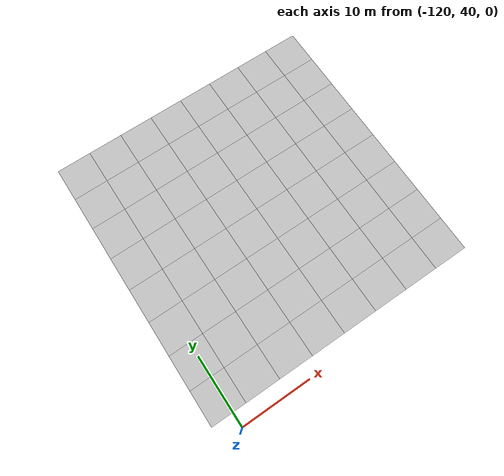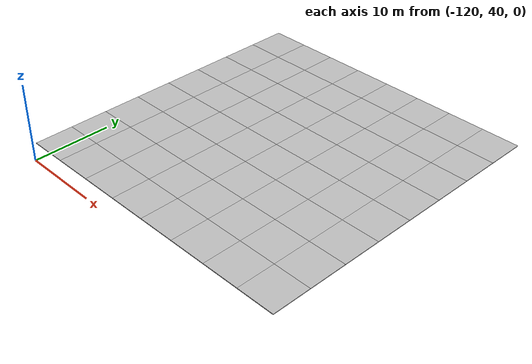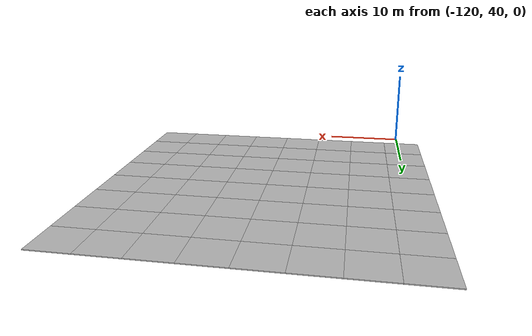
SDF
<sdf version="1.7">
 <world name="default">
  <model name="mud_plane_80x80_3">
   <model name="mud_plane_40x40">
    <model name="mud_plane_20x20">
     <model name="mud_plane">
      <static>1</static>
      <link name="link">
       <collision name="collision"><geometry><box><size>10 10 0.1</size></box></geometry></collision>
       <visual name="visual_1">
        <pose>-2.5 2.5 -0.05 0 -0 0</pose>
        <cast_shadows>0</cast_shadows>
        <geometry><box><size>5 5 0.1</size></box></geometry>
        <material>
         <script>
          <uri>model://mud_plane/materials/scripts</uri>
          <uri>model://mud_plane/materials/textures</uri>
          <name>vrc/mud</name>
         </script>
        </material>
       </visual>
       <visual name="visual_2">
        <pose>2.5 2.5 -0.05 0 -0 0</pose>
        <cast_shadows>0</cast_shadows>
        <geometry><box><size>5 5 0.1</size></box></geometry>
        <material>
         <script>
          <uri>model://mud_plane/materials/scripts</uri>
          <uri>model://mud_plane/materials/textures</uri>
          <name>vrc/mud</name>
         </script>
        </material>
       </visual>
       <visual name="visual_3">
        <pose>2.5 -2.5 -0.05 0 -0 0</pose>
        <cast_shadows>0</cast_shadows>
        <geometry><box><size>5 5 0.1</size></box></geometry>
        <material>
         <script>
          <uri>model://mud_plane/materials/scripts</uri>
          <uri>model://mud_plane/materials/textures</uri>
          <name>vrc/mud</name>
         </script>
        </material>
       </visual>
       <visual name="visual_4">
        <pose>-2.5 -2.5 -0.05 0 -0 0</pose>
        <cast_shadows>0</cast_shadows>
        <geometry><box><size>5 5 0.1</size></box></geometry>
        <material>
         <script>
          <uri>model://mud_plane/materials/scripts</uri>
          <uri>model://mud_plane/materials/textures</uri>
          <name>vrc/mud</name>
         </script>
        </material>
       </visual>
      </link>
      <pose>-4.99986 -4.99991 0 0 -0 0</pose>
     </model>
     <model name="mud_plane_0">
      <static>1</static>
      <link name="link">
       <collision name="collision"><geometry><box><size>10 10 0.1</size></box></geometry></collision>
       <visual name="visual_1">
        <pose>-2.5 2.5 -0.05 0 -0 0</pose>
        <cast_shadows>0</cast_shadows>
        <geometry><box><size>5 5 0.1</size></box></geometry>
        <material>
         <script>
          <uri>model://mud_plane/materials/scripts</uri>
          <uri>model://mud_plane/materials/textures</uri>
          <name>vrc/mud</name>
         </script>
        </material>
       </visual>
       <visual name="visual_2">
        <pose>2.5 2.5 -0.05 0 -0 0</pose>
        <cast_shadows>0</cast_shadows>
        <geometry><box><size>5 5 0.1</size></box></geometry>
        <material>
         <script>
          <uri>model://mud_plane/materials/scripts</uri>
          <uri>model://mud_plane/materials/textures</uri>
          <name>vrc/mud</name>
         </script>
        </material>
       </visual>
       <visual name="visual_3">
        <pose>2.5 -2.5 -0.05 0 -0 0</pose>
        <cast_shadows>0</cast_shadows>
        <geometry><box><size>5 5 0.1</size></box></geometry>
        <material>
         <script>
          <uri>model://mud_plane/materials/scripts</uri>
          <uri>model://mud_plane/materials/textures</uri>
          <name>vrc/mud</name>
         </script>
        </material>
       </visual>
       <visual name="visual_4">
        <pose>-2.5 -2.5 -0.05 0 -0 0</pose>
        <cast_shadows>0</cast_shadows>
        <geometry><box><size>5 5 0.1</size></box></geometry>
        <material>
         <script>
          <uri>model://mud_plane/materials/scripts</uri>
          <uri>model://mud_plane/materials/textures</uri>
          <name>vrc/mud</name>
         </script>
        </material>
       </visual>
      </link>
      <pose>-4.99946 4.99954 0 0 -0 0</pose>
     </model>
     <model name="mud_plane_1">
      <static>1</static>
      <link name="link">
       <collision name="collision"><geometry><box><size>10 10 0.1</size></box></geometry></collision>
       <visual name="visual_1">
        <pose>-2.5 2.5 -0.05 0 -0 0</pose>
        <cast_shadows>0</cast_shadows>
        <geometry><box><size>5 5 0.1</size></box></geometry>
        <material>
         <script>
          <uri>model://mud_plane/materials/scripts</uri>
          <uri>model://mud_plane/materials/textures</uri>
          <name>vrc/mud</name>
         </script>
        </material>
       </visual>
       <visual name="visual_2">
        <pose>2.5 2.5 -0.05 0 -0 0</pose>
        <cast_shadows>0</cast_shadows>
        <geometry><box><size>5 5 0.1</size></box></geometry>
        <material>
         <script>
          <uri>model://mud_plane/materials/scripts</uri>
          <uri>model://mud_plane/materials/textures</uri>
          <name>vrc/mud</name>
         </script>
        </material>
       </visual>
       <visual name="visual_3">
        <pose>2.5 -2.5 -0.05 0 -0 0</pose>
        <cast_shadows>0</cast_shadows>
        <geometry><box><size>5 5 0.1</size></box></geometry>
        <material>
         <script>
          <uri>model://mud_plane/materials/scripts</uri>
          <uri>model://mud_plane/materials/textures</uri>
          <name>vrc/mud</name>
         </script>
        </material>
       </visual>
       <visual name="visual_4">
        <pose>-2.5 -2.5 -0.05 0 -0 0</pose>
        <cast_shadows>0</cast_shadows>
        <geometry><box><size>5 5 0.1</size></box></geometry>
        <material>
         <script>
          <uri>model://mud_plane/materials/scripts</uri>
          <uri>model://mud_plane/materials/textures</uri>
          <name>vrc/mud</name>
         </script>
        </material>
       </visual>
      </link>
      <pose>4.99964 -4.99949 0 0 -0 0</pose>
     </model>
     <model name="mud_plane_2">
      <static>1</static>
      <link name="link">
       <collision name="collision"><geometry><box><size>10 10 0.1</size></box></geometry></collision>
       <visual name="visual_1">
        <pose>-2.5 2.5 -0.05 0 -0 0</pose>
        <cast_shadows>0</cast_shadows>
        <geometry><box><size>5 5 0.1</size></box></geometry>
        <material>
         <script>
          <uri>model://mud_plane/materials/scripts</uri>
          <uri>model://mud_plane/materials/textures</uri>
          <name>vrc/mud</name>
         </script>
        </material>
       </visual>
       <visual name="visual_2">
        <pose>2.5 2.5 -0.05 0 -0 0</pose>
        <cast_shadows>0</cast_shadows>
        <geometry><box><size>5 5 0.1</size></box></geometry>
        <material>
         <script>
          <uri>model://mud_plane/materials/scripts</uri>
          <uri>model://mud_plane/materials/textures</uri>
          <name>vrc/mud</name>
         </script>
        </material>
       </visual>
       <visual name="visual_3">
        <pose>2.5 -2.5 -0.05 0 -0 0</pose>
        <cast_shadows>0</cast_shadows>
        <geometry><box><size>5 5 0.1</size></box></geometry>
        <material>
         <script>
          <uri>model://mud_plane/materials/scripts</uri>
          <uri>model://mud_plane/materials/textures</uri>
          <name>vrc/mud</name>
         </script>
        </material>
       </visual>
       <visual name="visual_4">
        <pose>-2.5 -2.5 -0.05 0 -0 0</pose>
        <cast_shadows>0</cast_shadows>
        <geometry><box><size>5 5 0.1</size></box></geometry>
        <material>
         <script>
          <uri>model://mud_plane/materials/scripts</uri>
          <uri>model://mud_plane/materials/textures</uri>
          <name>vrc/mud</name>
         </script>
        </material>
       </visual>
      </link>
      <pose>4.99967 4.99986 0 0 -0 0</pose>
     </model>
     <static>0</static>
     <pose>-9.99895 9.99843 0 0 -0 0</pose>
    </model>
    <model name="mud_plane_20x20_0">
     <model name="mud_plane">
      <static>1</static>
      <link name="link">
       <collision name="collision"><geometry><box><size>10 10 0.1</size></box></geometry></collision>
       <visual name="visual_1">
        <pose>-2.5 2.5 -0.05 0 -0 0</pose>
        <cast_shadows>0</cast_shadows>
        <geometry><box><size>5 5 0.1</size></box></geometry>
        <material>
         <script>
          <uri>model://mud_plane/materials/scripts</uri>
          <uri>model://mud_plane/materials/textures</uri>
          <name>vrc/mud</name>
         </script>
        </material>
       </visual>
       <visual name="visual_2">
        <pose>2.5 2.5 -0.05 0 -0 0</pose>
        <cast_shadows>0</cast_shadows>
        <geometry><box><size>5 5 0.1</size></box></geometry>
        <material>
         <script>
          <uri>model://mud_plane/materials/scripts</uri>
          <uri>model://mud_plane/materials/textures</uri>
          <name>vrc/mud</name>
         </script>
        </material>
       </visual>
       <visual name="visual_3">
        <pose>2.5 -2.5 -0.05 0 -0 0</pose>
        <cast_shadows>0</cast_shadows>
        <geometry><box><size>5 5 0.1</size></box></geometry>
        <material>
         <script>
          <uri>model://mud_plane/materials/scripts</uri>
          <uri>model://mud_plane/materials/textures</uri>
          <name>vrc/mud</name>
         </script>
        </material>
       </visual>
       <visual name="visual_4">
        <pose>-2.5 -2.5 -0.05 0 -0 0</pose>
        <cast_shadows>0</cast_shadows>
        <geometry><box><size>5 5 0.1</size></box></geometry>
        <material>
         <script>
          <uri>model://mud_plane/materials/scripts</uri>
          <uri>model://mud_plane/materials/textures</uri>
          <name>vrc/mud</name>
         </script>
        </material>
       </visual>
      </link>
      <pose>-4.99986 -4.99991 0 0 -0 0</pose>
     </model>
     <model name="mud_plane_0">
      <static>1</static>
      <link name="link">
       <collision name="collision"><geometry><box><size>10 10 0.1</size></box></geometry></collision>
       <visual name="visual_1">
        <pose>-2.5 2.5 -0.05 0 -0 0</pose>
        <cast_shadows>0</cast_shadows>
        <geometry><box><size>5 5 0.1</size></box></geometry>
        <material>
         <script>
          <uri>model://mud_plane/materials/scripts</uri>
          <uri>model://mud_plane/materials/textures</uri>
          <name>vrc/mud</name>
         </script>
        </material>
       </visual>
       <visual name="visual_2">
        <pose>2.5 2.5 -0.05 0 -0 0</pose>
        <cast_shadows>0</cast_shadows>
        <geometry><box><size>5 5 0.1</size></box></geometry>
        <material>
         <script>
          <uri>model://mud_plane/materials/scripts</uri>
          <uri>model://mud_plane/materials/textures</uri>
          <name>vrc/mud</name>
         </script>
        </material>
       </visual>
       <visual name="visual_3">
        <pose>2.5 -2.5 -0.05 0 -0 0</pose>
        <cast_shadows>0</cast_shadows>
        <geometry><box><size>5 5 0.1</size></box></geometry>
        <material>
         <script>
          <uri>model://mud_plane/materials/scripts</uri>
          <uri>model://mud_plane/materials/textures</uri>
          <name>vrc/mud</name>
         </script>
        </material>
       </visual>
       <visual name="visual_4">
        <pose>-2.5 -2.5 -0.05 0 -0 0</pose>
        <cast_shadows>0</cast_shadows>
        <geometry><box><size>5 5 0.1</size></box></geometry>
        <material>
         <script>
          <uri>model://mud_plane/materials/scripts</uri>
          <uri>model://mud_plane/materials/textures</uri>
          <name>vrc/mud</name>
         </script>
        </material>
       </visual>
      </link>
      <pose>-4.99946 4.99954 0 0 -0 0</pose>
     </model>
     <model name="mud_plane_1">
      <static>1</static>
      <link name="link">
       <collision name="collision"><geometry><box><size>10 10 0.1</size></box></geometry></collision>
       <visual name="visual_1">
        <pose>-2.5 2.5 -0.05 0 -0 0</pose>
        <cast_shadows>0</cast_shadows>
        <geometry><box><size>5 5 0.1</size></box></geometry>
        <material>
         <script>
          <uri>model://mud_plane/materials/scripts</uri>
          <uri>model://mud_plane/materials/textures</uri>
          <name>vrc/mud</name>
         </script>
        </material>
       </visual>
       <visual name="visual_2">
        <pose>2.5 2.5 -0.05 0 -0 0</pose>
        <cast_shadows>0</cast_shadows>
        <geometry><box><size>5 5 0.1</size></box></geometry>
        <material>
         <script>
          <uri>model://mud_plane/materials/scripts</uri>
          <uri>model://mud_plane/materials/textures</uri>
          <name>vrc/mud</name>
         </script>
        </material>
       </visual>
       <visual name="visual_3">
        <pose>2.5 -2.5 -0.05 0 -0 0</pose>
        <cast_shadows>0</cast_shadows>
        <geometry><box><size>5 5 0.1</size></box></geometry>
        <material>
         <script>
          <uri>model://mud_plane/materials/scripts</uri>
          <uri>model://mud_plane/materials/textures</uri>
          <name>vrc/mud</name>
         </script>
        </material>
       </visual>
       <visual name="visual_4">
        <pose>-2.5 -2.5 -0.05 0 -0 0</pose>
        <cast_shadows>0</cast_shadows>
        <geometry><box><size>5 5 0.1</size></box></geometry>
        <material>
         <script>
          <uri>model://mud_plane/materials/scripts</uri>
          <uri>model://mud_plane/materials/textures</uri>
          <name>vrc/mud</name>
         </script>
        </material>
       </visual>
      </link>
      <pose>4.99964 -4.99949 0 0 -0 0</pose>
     </model>
     <model name="mud_plane_2">
      <static>1</static>
      <link name="link">
       <collision name="collision"><geometry><box><size>10 10 0.1</size></box></geometry></collision>
       <visual name="visual_1">
        <pose>-2.5 2.5 -0.05 0 -0 0</pose>
        <cast_shadows>0</cast_shadows>
        <geometry><box><size>5 5 0.1</size></box></geometry>
        <material>
         <script>
          <uri>model://mud_plane/materials/scripts</uri>
          <uri>model://mud_plane/materials/textures</uri>
          <name>vrc/mud</name>
         </script>
        </material>
       </visual>
       <visual name="visual_2">
        <pose>2.5 2.5 -0.05 0 -0 0</pose>
        <cast_shadows>0</cast_shadows>
        <geometry><box><size>5 5 0.1</size></box></geometry>
        <material>
         <script>
          <uri>model://mud_plane/materials/scripts</uri>
          <uri>model://mud_plane/materials/textures</uri>
          <name>vrc/mud</name>
         </script>
        </material>
       </visual>
       <visual name="visual_3">
        <pose>2.5 -2.5 -0.05 0 -0 0</pose>
        <cast_shadows>0</cast_shadows>
        <geometry><box><size>5 5 0.1</size></box></geometry>
        <material>
         <script>
          <uri>model://mud_plane/materials/scripts</uri>
          <uri>model://mud_plane/materials/textures</uri>
          <name>vrc/mud</name>
         </script>
        </material>
       </visual>
       <visual name="visual_4">
        <pose>-2.5 -2.5 -0.05 0 -0 0</pose>
        <cast_shadows>0</cast_shadows>
        <geometry><box><size>5 5 0.1</size></box></geometry>
        <material>
         <script>
          <uri>model://mud_plane/materials/scripts</uri>
          <uri>model://mud_plane/materials/textures</uri>
          <name>vrc/mud</name>
         </script>
        </material>
       </visual>
      </link>
      <pose>4.99967 4.99986 0 0 -0 0</pose>
     </model>
     <static>0</static>
     <pose>9.99933 9.9997 0 0 -0 0</pose>
    </model>
    <model name="mud_plane_20x20_1">
     <model name="mud_plane">
      <static>1</static>
      <link name="link">
       <collision name="collision"><geometry><box><size>10 10 0.1</size></box></geometry></collision>
       <visual name="visual_1">
        <pose>-2.5 2.5 -0.05 0 -0 0</pose>
        <cast_shadows>0</cast_shadows>
        <geometry><box><size>5 5 0.1</size></box></geometry>
        <material>
         <script>
          <uri>model://mud_plane/materials/scripts</uri>
          <uri>model://mud_plane/materials/textures</uri>
          <name>vrc/mud</name>
         </script>
        </material>
       </visual>
       <visual name="visual_2">
        <pose>2.5 2.5 -0.05 0 -0 0</pose>
        <cast_shadows>0</cast_shadows>
        <geometry><box><size>5 5 0.1</size></box></geometry>
        <material>
         <script>
          <uri>model://mud_plane/materials/scripts</uri>
          <uri>model://mud_plane/materials/textures</uri>
          <name>vrc/mud</name>
         </script>
        </material>
       </visual>
       <visual name="visual_3">
        <pose>2.5 -2.5 -0.05 0 -0 0</pose>
        <cast_shadows>0</cast_shadows>
        <geometry><box><size>5 5 0.1</size></box></geometry>
        <material>
         <script>
          <uri>model://mud_plane/materials/scripts</uri>
          <uri>model://mud_plane/materials/textures</uri>
          <name>vrc/mud</name>
         </script>
        </material>
       </visual>
       <visual name="visual_4">
        <pose>-2.5 -2.5 -0.05 0 -0 0</pose>
        <cast_shadows>0</cast_shadows>
        <geometry><box><size>5 5 0.1</size></box></geometry>
        <material>
         <script>
          <uri>model://mud_plane/materials/scripts</uri>
          <uri>model://mud_plane/materials/textures</uri>
          <name>vrc/mud</name>
         </script>
        </material>
       </visual>
      </link>
      <pose>-4.99986 -4.99991 0 0 -0 0</pose>
     </model>
     <model name="mud_plane_0">
      <static>1</static>
      <link name="link">
       <collision name="collision"><geometry><box><size>10 10 0.1</size></box></geometry></collision>
       <visual name="visual_1">
        <pose>-2.5 2.5 -0.05 0 -0 0</pose>
        <cast_shadows>0</cast_shadows>
        <geometry><box><size>5 5 0.1</size></box></geometry>
        <material>
         <script>
          <uri>model://mud_plane/materials/scripts</uri>
          <uri>model://mud_plane/materials/textures</uri>
          <name>vrc/mud</name>
         </script>
        </material>
       </visual>
       <visual name="visual_2">
        <pose>2.5 2.5 -0.05 0 -0 0</pose>
        <cast_shadows>0</cast_shadows>
        <geometry><box><size>5 5 0.1</size></box></geometry>
        <material>
         <script>
          <uri>model://mud_plane/materials/scripts</uri>
          <uri>model://mud_plane/materials/textures</uri>
          <name>vrc/mud</name>
         </script>
        </material>
       </visual>
       <visual name="visual_3">
        <pose>2.5 -2.5 -0.05 0 -0 0</pose>
        <cast_shadows>0</cast_shadows>
        <geometry><box><size>5 5 0.1</size></box></geometry>
        <material>
         <script>
          <uri>model://mud_plane/materials/scripts</uri>
          <uri>model://mud_plane/materials/textures</uri>
          <name>vrc/mud</name>
         </script>
        </material>
       </visual>
       <visual name="visual_4">
        <pose>-2.5 -2.5 -0.05 0 -0 0</pose>
        <cast_shadows>0</cast_shadows>
        <geometry><box><size>5 5 0.1</size></box></geometry>
        <material>
         <script>
          <uri>model://mud_plane/materials/scripts</uri>
          <uri>model://mud_plane/materials/textures</uri>
          <name>vrc/mud</name>
         </script>
        </material>
       </visual>
      </link>
      <pose>-4.99946 4.99954 0 0 -0 0</pose>
     </model>
     <model name="mud_plane_1">
      <static>1</static>
      <link name="link">
       <collision name="collision"><geometry><box><size>10 10 0.1</size></box></geometry></collision>
       <visual name="visual_1">
        <pose>-2.5 2.5 -0.05 0 -0 0</pose>
        <cast_shadows>0</cast_shadows>
        <geometry><box><size>5 5 0.1</size></box></geometry>
        <material>
         <script>
          <uri>model://mud_plane/materials/scripts</uri>
          <uri>model://mud_plane/materials/textures</uri>
          <name>vrc/mud</name>
         </script>
        </material>
       </visual>
       <visual name="visual_2">
        <pose>2.5 2.5 -0.05 0 -0 0</pose>
        <cast_shadows>0</cast_shadows>
        <geometry><box><size>5 5 0.1</size></box></geometry>
        <material>
         <script>
          <uri>model://mud_plane/materials/scripts</uri>
          <uri>model://mud_plane/materials/textures</uri>
          <name>vrc/mud</name>
         </script>
        </material>
       </visual>
       <visual name="visual_3">
        <pose>2.5 -2.5 -0.05 0 -0 0</pose>
        <cast_shadows>0</cast_shadows>
        <geometry><box><size>5 5 0.1</size></box></geometry>
        <material>
         <script>
          <uri>model://mud_plane/materials/scripts</uri>
          <uri>model://mud_plane/materials/textures</uri>
          <name>vrc/mud</name>
         </script>
        </material>
       </visual>
       <visual name="visual_4">
        <pose>-2.5 -2.5 -0.05 0 -0 0</pose>
        <cast_shadows>0</cast_shadows>
        <geometry><box><size>5 5 0.1</size></box></geometry>
        <material>
         <script>
          <uri>model://mud_plane/materials/scripts</uri>
          <uri>model://mud_plane/materials/textures</uri>
          <name>vrc/mud</name>
         </script>
        </material>
       </visual>
      </link>
      <pose>4.99964 -4.99949 0 0 -0 0</pose>
     </model>
     <model name="mud_plane_2">
      <static>1</static>
      <link name="link">
       <collision name="collision"><geometry><box><size>10 10 0.1</size></box></geometry></collision>
       <visual name="visual_1">
        <pose>-2.5 2.5 -0.05 0 -0 0</pose>
        <cast_shadows>0</cast_shadows>
        <geometry><box><size>5 5 0.1</size></box></geometry>
        <material>
         <script>
          <uri>model://mud_plane/materials/scripts</uri>
          <uri>model://mud_plane/materials/textures</uri>
          <name>vrc/mud</name>
         </script>
        </material>
       </visual>
       <visual name="visual_2">
        <pose>2.5 2.5 -0.05 0 -0 0</pose>
        <cast_shadows>0</cast_shadows>
        <geometry><box><size>5 5 0.1</size></box></geometry>
        <material>
         <script>
          <uri>model://mud_plane/materials/scripts</uri>
          <uri>model://mud_plane/materials/textures</uri>
          <name>vrc/mud</name>
         </script>
        </material>
       </visual>
       <visual name="visual_3">
        <pose>2.5 -2.5 -0.05 0 -0 0</pose>
        <cast_shadows>0</cast_shadows>
        <geometry><box><size>5 5 0.1</size></box></geometry>
        <material>
         <script>
          <uri>model://mud_plane/materials/scripts</uri>
          <uri>model://mud_plane/materials/textures</uri>
          <name>vrc/mud</name>
         </script>
        </material>
       </visual>
       <visual name="visual_4">
        <pose>-2.5 -2.5 -0.05 0 -0 0</pose>
        <cast_shadows>0</cast_shadows>
        <geometry><box><size>5 5 0.1</size></box></geometry>
        <material>
         <script>
          <uri>model://mud_plane/materials/scripts</uri>
          <uri>model://mud_plane/materials/textures</uri>
          <name>vrc/mud</name>
         </script>
        </material>
       </visual>
      </link>
      <pose>4.99967 4.99986 0 0 -0 0</pose>
     </model>
     <static>0</static>
     <pose>9.9993 -9.99877 0 0 -0 0</pose>
    </model>
    <model name="mud_plane_20x20_2">
     <model name="mud_plane">
      <static>1</static>
      <link name="link">
       <collision name="collision"><geometry><box><size>10 10 0.1</size></box></geometry></collision>
       <visual name="visual_1">
        <pose>-2.5 2.5 -0.05 0 -0 0</pose>
        <cast_shadows>0</cast_shadows>
        <geometry><box><size>5 5 0.1</size></box></geometry>
        <material>
         <script>
          <uri>model://mud_plane/materials/scripts</uri>
          <uri>model://mud_plane/materials/textures</uri>
          <name>vrc/mud</name>
         </script>
        </material>
       </visual>
       <visual name="visual_2">
        <pose>2.5 2.5 -0.05 0 -0 0</pose>
        <cast_shadows>0</cast_shadows>
        <geometry><box><size>5 5 0.1</size></box></geometry>
        <material>
         <script>
          <uri>model://mud_plane/materials/scripts</uri>
          <uri>model://mud_plane/materials/textures</uri>
          <name>vrc/mud</name>
         </script>
        </material>
       </visual>
       <visual name="visual_3">
        <pose>2.5 -2.5 -0.05 0 -0 0</pose>
        <cast_shadows>0</cast_shadows>
        <geometry><box><size>5 5 0.1</size></box></geometry>
        <material>
         <script>
          <uri>model://mud_plane/materials/scripts</uri>
          <uri>model://mud_plane/materials/textures</uri>
          <name>vrc/mud</name>
         </script>
        </material>
       </visual>
       <visual name="visual_4">
        <pose>-2.5 -2.5 -0.05 0 -0 0</pose>
        <cast_shadows>0</cast_shadows>
        <geometry><box><size>5 5 0.1</size></box></geometry>
        <material>
         <script>
          <uri>model://mud_plane/materials/scripts</uri>
          <uri>model://mud_plane/materials/textures</uri>
          <name>vrc/mud</name>
         </script>
        </material>
       </visual>
      </link>
      <pose>-4.99986 -4.99991 0 0 -0 0</pose>
     </model>
     <model name="mud_plane_0">
      <static>1</static>
      <link name="link">
       <collision name="collision"><geometry><box><size>10 10 0.1</size></box></geometry></collision>
       <visual name="visual_1">
        <pose>-2.5 2.5 -0.05 0 -0 0</pose>
        <cast_shadows>0</cast_shadows>
        <geometry><box><size>5 5 0.1</size></box></geometry>
        <material>
         <script>
          <uri>model://mud_plane/materials/scripts</uri>
          <uri>model://mud_plane/materials/textures</uri>
          <name>vrc/mud</name>
         </script>
        </material>
       </visual>
       <visual name="visual_2">
        <pose>2.5 2.5 -0.05 0 -0 0</pose>
        <cast_shadows>0</cast_shadows>
        <geometry><box><size>5 5 0.1</size></box></geometry>
        <material>
         <script>
          <uri>model://mud_plane/materials/scripts</uri>
          <uri>model://mud_plane/materials/textures</uri>
          <name>vrc/mud</name>
         </script>
        </material>
       </visual>
       <visual name="visual_3">
        <pose>2.5 -2.5 -0.05 0 -0 0</pose>
        <cast_shadows>0</cast_shadows>
        <geometry><box><size>5 5 0.1</size></box></geometry>
        <material>
         <script>
          <uri>model://mud_plane/materials/scripts</uri>
          <uri>model://mud_plane/materials/textures</uri>
          <name>vrc/mud</name>
         </script>
        </material>
       </visual>
       <visual name="visual_4">
        <pose>-2.5 -2.5 -0.05 0 -0 0</pose>
        <cast_shadows>0</cast_shadows>
        <geometry><box><size>5 5 0.1</size></box></geometry>
        <material>
         <script>
          <uri>model://mud_plane/materials/scripts</uri>
          <uri>model://mud_plane/materials/textures</uri>
          <name>vrc/mud</name>
         </script>
        </material>
       </visual>
      </link>
      <pose>-4.99946 4.99954 0 0 -0 0</pose>
     </model>
     <model name="mud_plane_1">
      <static>1</static>
      <link name="link">
       <collision name="collision"><geometry><box><size>10 10 0.1</size></box></geometry></collision>
       <visual name="visual_1">
        <pose>-2.5 2.5 -0.05 0 -0 0</pose>
        <cast_shadows>0</cast_shadows>
        <geometry><box><size>5 5 0.1</size></box></geometry>
        <material>
         <script>
          <uri>model://mud_plane/materials/scripts</uri>
          <uri>model://mud_plane/materials/textures</uri>
          <name>vrc/mud</name>
         </script>
        </material>
       </visual>
       <visual name="visual_2">
        <pose>2.5 2.5 -0.05 0 -0 0</pose>
        <cast_shadows>0</cast_shadows>
        <geometry><box><size>5 5 0.1</size></box></geometry>
        <material>
         <script>
          <uri>model://mud_plane/materials/scripts</uri>
          <uri>model://mud_plane/materials/textures</uri>
          <name>vrc/mud</name>
         </script>
        </material>
       </visual>
       <visual name="visual_3">
        <pose>2.5 -2.5 -0.05 0 -0 0</pose>
        <cast_shadows>0</cast_shadows>
        <geometry><box><size>5 5 0.1</size></box></geometry>
        <material>
         <script>
          <uri>model://mud_plane/materials/scripts</uri>
          <uri>model://mud_plane/materials/textures</uri>
          <name>vrc/mud</name>
         </script>
        </material>
       </visual>
       <visual name="visual_4">
        <pose>-2.5 -2.5 -0.05 0 -0 0</pose>
        <cast_shadows>0</cast_shadows>
        <geometry><box><size>5 5 0.1</size></box></geometry>
        <material>
         <script>
          <uri>model://mud_plane/materials/scripts</uri>
          <uri>model://mud_plane/materials/textures</uri>
          <name>vrc/mud</name>
         </script>
        </material>
       </visual>
      </link>
      <pose>4.99964 -4.99949 0 0 -0 0</pose>
     </model>
     <model name="mud_plane_2">
      <static>1</static>
      <link name="link">
       <collision name="collision"><geometry><box><size>10 10 0.1</size></box></geometry></collision>
       <visual name="visual_1">
        <pose>-2.5 2.5 -0.05 0 -0 0</pose>
        <cast_shadows>0</cast_shadows>
        <geometry><box><size>5 5 0.1</size></box></geometry>
        <material>
         <script>
          <uri>model://mud_plane/materials/scripts</uri>
          <uri>model://mud_plane/materials/textures</uri>
          <name>vrc/mud</name>
         </script>
        </material>
       </visual>
       <visual name="visual_2">
        <pose>2.5 2.5 -0.05 0 -0 0</pose>
        <cast_shadows>0</cast_shadows>
        <geometry><box><size>5 5 0.1</size></box></geometry>
        <material>
         <script>
          <uri>model://mud_plane/materials/scripts</uri>
          <uri>model://mud_plane/materials/textures</uri>
          <name>vrc/mud</name>
         </script>
        </material>
       </visual>
       <visual name="visual_3">
        <pose>2.5 -2.5 -0.05 0 -0 0</pose>
        <cast_shadows>0</cast_shadows>
        <geometry><box><size>5 5 0.1</size></box></geometry>
        <material>
         <script>
          <uri>model://mud_plane/materials/scripts</uri>
          <uri>model://mud_plane/materials/textures</uri>
          <name>vrc/mud</name>
         </script>
        </material>
       </visual>
       <visual name="visual_4">
        <pose>-2.5 -2.5 -0.05 0 -0 0</pose>
        <cast_shadows>0</cast_shadows>
        <geometry><box><size>5 5 0.1</size></box></geometry>
        <material>
         <script>
          <uri>model://mud_plane/materials/scripts</uri>
          <uri>model://mud_plane/materials/textures</uri>
          <name>vrc/mud</name>
         </script>
        </material>
       </visual>
      </link>
      <pose>4.99967 4.99986 0 0 -0 0</pose>
     </model>
     <static>0</static>
     <pose>-9.99969 -9.99935 0 0 -0 0</pose>
    </model>
    <static>0</static>
    <pose>19.9986 19.9995 0 0 -0 0</pose>
   </model>
   <static>0</static>
   <pose>-123.082 42.0534 0 0 -0 0</pose>
  </model>
 </world>
</sdf>
